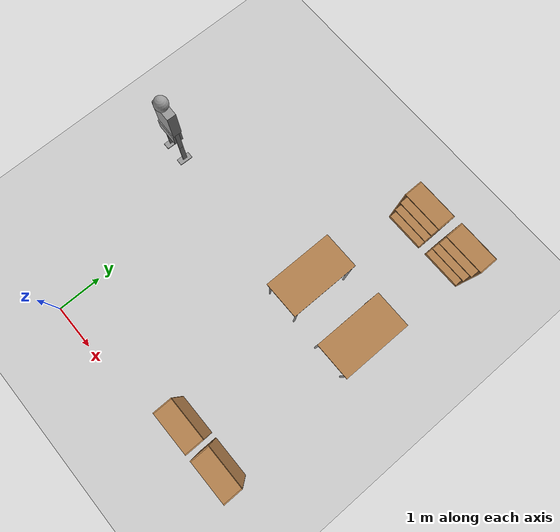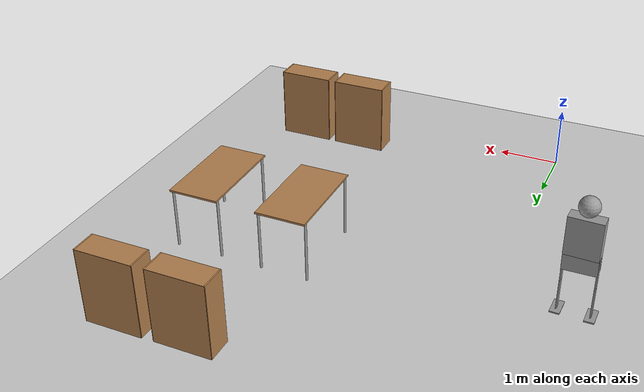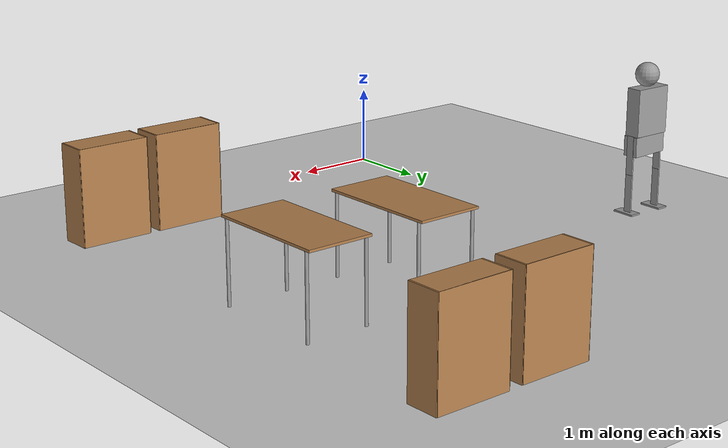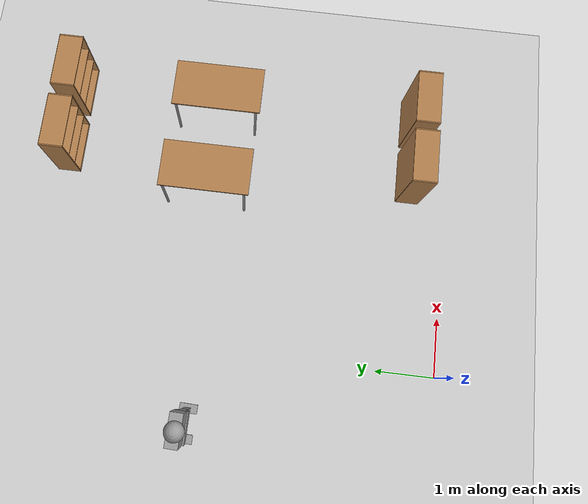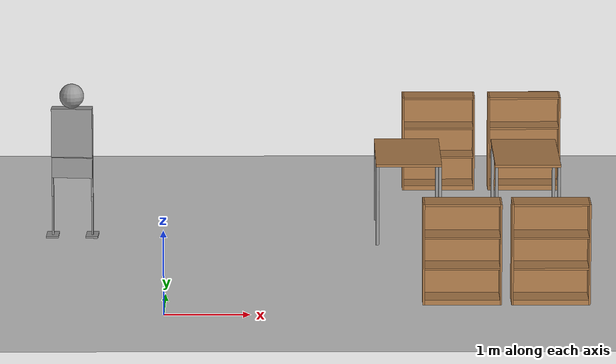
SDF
<sdf version="1.6">
 <world name="default">
  <model name="ground_plane">
   <static>1</static>
   <link name="link">
    <collision name="collision">
     <geometry><plane><normal>0 0 1</normal><size>100 100</size></plane></geometry>
     <surface>
      <contact><collide_bitmask>65535</collide_bitmask></contact>
      <friction><ode><mu>100</mu><mu2>50</mu2></ode></friction>
     </surface>
    </collision>
    <visual name="visual">
     <cast_shadows>0</cast_shadows>
     <geometry><plane><normal>0 0 1</normal><size>100 100</size></plane></geometry>
     <material>
      <script><uri>file://media/materials/scripts/gazebo.material</uri><name>Gazebo/Grey</name></script>
     </material>
    </visual>
   </link>
  </model>
  <model name="bookshelf">
   <static>1</static>
   <link name="link">
    <inertial><mass>1</mass></inertial>
    <collision name="back">
     <pose>0 0.005 0.6 0 -0 0</pose>
     <geometry><box><size>0.9 0.01 1.2</size></box></geometry>
    </collision>
    <visual name="visual1">
     <pose>0 0.005 0.6 0 -0 0</pose>
     <geometry><box><size>0.9 0.01 1.2</size></box></geometry>
     <material>
      <script><uri>file://media/materials/scripts/gazebo.material</uri><name>Gazebo/Wood</name></script>
     </material>
    </visual>
    <collision name="left_side">
     <pose>0.45 -0.195 0.6 0 -0 0</pose>
     <geometry><box><size>0.02 0.4 1.2</size></box></geometry>
    </collision>
    <visual name="visual2">
     <pose>0.45 -0.195 0.6 0 -0 0</pose>
     <geometry><box><size>0.02 0.4 1.2</size></box></geometry>
     <material>
      <script><uri>file://media/materials/scripts/gazebo.material</uri><name>Gazebo/Wood</name></script>
     </material>
    </visual>
    <collision name="right_side">
     <pose>-0.45 -0.195 0.6 0 -0 0</pose>
     <geometry><box><size>0.02 0.4 1.2</size></box></geometry>
    </collision>
    <visual name="visual3">
     <pose>-0.45 -0.195 0.6 0 -0 0</pose>
     <geometry><box><size>0.02 0.4 1.2</size></box></geometry>
     <material>
      <script><uri>file://media/materials/scripts/gazebo.material</uri><name>Gazebo/Wood</name></script>
     </material>
    </visual>
    <collision name="bottom">
     <pose>0 -0.195 0.03 0 -0 0</pose>
     <geometry><box><size>0.88 0.4 0.06</size></box></geometry>
    </collision>
    <visual name="visual4">
     <pose>0 -0.195 0.03 0 -0 0</pose>
     <geometry><box><size>0.88 0.4 0.06</size></box></geometry>
     <material>
      <script><uri>file://media/materials/scripts/gazebo.material</uri><name>Gazebo/Wood</name></script>
     </material>
    </visual>
    <collision name="top">
     <pose>0 -0.195 1.19 0 -0 0</pose>
     <geometry><box><size>0.88 0.4 0.02</size></box></geometry>
    </collision>
    <visual name="visual5">
     <pose>0 -0.195 1.19 0 -0 0</pose>
     <geometry><box><size>0.88 0.4 0.02</size></box></geometry>
     <material>
      <script><uri>file://media/materials/scripts/gazebo.material</uri><name>Gazebo/Wood</name></script>
     </material>
    </visual>
    <collision name="low_shelf">
     <pose>0 -0.195 0.43 0 -0 0</pose>
     <geometry><box><size>0.88 0.4 0.02</size></box></geometry>
    </collision>
    <visual name="visual6">
     <pose>0 -0.195 0.43 0 -0 0</pose>
     <geometry><box><size>0.88 0.4 0.02</size></box></geometry>
     <material>
      <script><uri>file://media/materials/scripts/gazebo.material</uri><name>Gazebo/Wood</name></script>
     </material>
    </visual>
    <collision name="high_shelf">
     <pose>0 -0.195 0.8 0 -0 0</pose>
     <geometry><box><size>0.88 0.4 0.02</size></box></geometry>
    </collision>
    <visual name="visual7">
     <pose>0 -0.195 0.8 0 -0 0</pose>
     <geometry><box><size>0.88 0.4 0.02</size></box></geometry>
     <material>
      <script><uri>file://media/materials/scripts/gazebo.material</uri><name>Gazebo/Wood</name></script>
     </material>
    </visual>
   </link>
   <pose>3.46605 0.843207 0 0 -0 0</pose>
  </model>
  <model name="bookshelf_0">
   <static>1</static>
   <link name="link">
    <inertial><mass>1</mass></inertial>
    <collision name="back">
     <pose>0 0.005 0.6 0 -0 0</pose>
     <geometry><box><size>0.9 0.01 1.2</size></box></geometry>
    </collision>
    <visual name="visual1">
     <pose>0 0.005 0.6 0 -0 0</pose>
     <geometry><box><size>0.9 0.01 1.2</size></box></geometry>
     <material>
      <script><uri>file://media/materials/scripts/gazebo.material</uri><name>Gazebo/Wood</name></script>
     </material>
    </visual>
    <collision name="left_side">
     <pose>0.45 -0.195 0.6 0 -0 0</pose>
     <geometry><box><size>0.02 0.4 1.2</size></box></geometry>
    </collision>
    <visual name="visual2">
     <pose>0.45 -0.195 0.6 0 -0 0</pose>
     <geometry><box><size>0.02 0.4 1.2</size></box></geometry>
     <material>
      <script><uri>file://media/materials/scripts/gazebo.material</uri><name>Gazebo/Wood</name></script>
     </material>
    </visual>
    <collision name="right_side">
     <pose>-0.45 -0.195 0.6 0 -0 0</pose>
     <geometry><box><size>0.02 0.4 1.2</size></box></geometry>
    </collision>
    <visual name="visual3">
     <pose>-0.45 -0.195 0.6 0 -0 0</pose>
     <geometry><box><size>0.02 0.4 1.2</size></box></geometry>
     <material>
      <script><uri>file://media/materials/scripts/gazebo.material</uri><name>Gazebo/Wood</name></script>
     </material>
    </visual>
    <collision name="bottom">
     <pose>0 -0.195 0.03 0 -0 0</pose>
     <geometry><box><size>0.88 0.4 0.06</size></box></geometry>
    </collision>
    <visual name="visual4">
     <pose>0 -0.195 0.03 0 -0 0</pose>
     <geometry><box><size>0.88 0.4 0.06</size></box></geometry>
     <material>
      <script><uri>file://media/materials/scripts/gazebo.material</uri><name>Gazebo/Wood</name></script>
     </material>
    </visual>
    <collision name="top">
     <pose>0 -0.195 1.19 0 -0 0</pose>
     <geometry><box><size>0.88 0.4 0.02</size></box></geometry>
    </collision>
    <visual name="visual5">
     <pose>0 -0.195 1.19 0 -0 0</pose>
     <geometry><box><size>0.88 0.4 0.02</size></box></geometry>
     <material>
      <script><uri>file://media/materials/scripts/gazebo.material</uri><name>Gazebo/Wood</name></script>
     </material>
    </visual>
    <collision name="low_shelf">
     <pose>0 -0.195 0.43 0 -0 0</pose>
     <geometry><box><size>0.88 0.4 0.02</size></box></geometry>
    </collision>
    <visual name="visual6">
     <pose>0 -0.195 0.43 0 -0 0</pose>
     <geometry><box><size>0.88 0.4 0.02</size></box></geometry>
     <material>
      <script><uri>file://media/materials/scripts/gazebo.material</uri><name>Gazebo/Wood</name></script>
     </material>
    </visual>
    <collision name="high_shelf">
     <pose>0 -0.195 0.8 0 -0 0</pose>
     <geometry><box><size>0.88 0.4 0.02</size></box></geometry>
    </collision>
    <visual name="visual7">
     <pose>0 -0.195 0.8 0 -0 0</pose>
     <geometry><box><size>0.88 0.4 0.02</size></box></geometry>
     <material>
      <script><uri>file://media/materials/scripts/gazebo.material</uri><name>Gazebo/Wood</name></script>
     </material>
    </visual>
   </link>
   <pose>4.50105 0.843269 0 0 -0 0</pose>
  </model>
  <model name="bookshelf_1">
   <static>1</static>
   <link name="link">
    <inertial><mass>1</mass></inertial>
    <collision name="back">
     <pose>0 0.005 0.6 0 -0 0</pose>
     <geometry><box><size>0.9 0.01 1.2</size></box></geometry>
    </collision>
    <visual name="visual1">
     <pose>0 0.005 0.6 0 -0 0</pose>
     <geometry><box><size>0.9 0.01 1.2</size></box></geometry>
     <material>
      <script><uri>file://media/materials/scripts/gazebo.material</uri><name>Gazebo/Wood</name></script>
     </material>
    </visual>
    <collision name="left_side">
     <pose>0.45 -0.195 0.6 0 -0 0</pose>
     <geometry><box><size>0.02 0.4 1.2</size></box></geometry>
    </collision>
    <visual name="visual2">
     <pose>0.45 -0.195 0.6 0 -0 0</pose>
     <geometry><box><size>0.02 0.4 1.2</size></box></geometry>
     <material>
      <script><uri>file://media/materials/scripts/gazebo.material</uri><name>Gazebo/Wood</name></script>
     </material>
    </visual>
    <collision name="right_side">
     <pose>-0.45 -0.195 0.6 0 -0 0</pose>
     <geometry><box><size>0.02 0.4 1.2</size></box></geometry>
    </collision>
    <visual name="visual3">
     <pose>-0.45 -0.195 0.6 0 -0 0</pose>
     <geometry><box><size>0.02 0.4 1.2</size></box></geometry>
     <material>
      <script><uri>file://media/materials/scripts/gazebo.material</uri><name>Gazebo/Wood</name></script>
     </material>
    </visual>
    <collision name="bottom">
     <pose>0 -0.195 0.03 0 -0 0</pose>
     <geometry><box><size>0.88 0.4 0.06</size></box></geometry>
    </collision>
    <visual name="visual4">
     <pose>0 -0.195 0.03 0 -0 0</pose>
     <geometry><box><size>0.88 0.4 0.06</size></box></geometry>
     <material>
      <script><uri>file://media/materials/scripts/gazebo.material</uri><name>Gazebo/Wood</name></script>
     </material>
    </visual>
    <collision name="top">
     <pose>0 -0.195 1.19 0 -0 0</pose>
     <geometry><box><size>0.88 0.4 0.02</size></box></geometry>
    </collision>
    <visual name="visual5">
     <pose>0 -0.195 1.19 0 -0 0</pose>
     <geometry><box><size>0.88 0.4 0.02</size></box></geometry>
     <material>
      <script><uri>file://media/materials/scripts/gazebo.material</uri><name>Gazebo/Wood</name></script>
     </material>
    </visual>
    <collision name="low_shelf">
     <pose>0 -0.195 0.43 0 -0 0</pose>
     <geometry><box><size>0.88 0.4 0.02</size></box></geometry>
    </collision>
    <visual name="visual6">
     <pose>0 -0.195 0.43 0 -0 0</pose>
     <geometry><box><size>0.88 0.4 0.02</size></box></geometry>
     <material>
      <script><uri>file://media/materials/scripts/gazebo.material</uri><name>Gazebo/Wood</name></script>
     </material>
    </visual>
    <collision name="high_shelf">
     <pose>0 -0.195 0.8 0 -0 0</pose>
     <geometry><box><size>0.88 0.4 0.02</size></box></geometry>
    </collision>
    <visual name="visual7">
     <pose>0 -0.195 0.8 0 -0 0</pose>
     <geometry><box><size>0.88 0.4 0.02</size></box></geometry>
     <material>
      <script><uri>file://media/materials/scripts/gazebo.material</uri><name>Gazebo/Wood</name></script>
     </material>
    </visual>
   </link>
   <pose>4.44157 6.94121 0 0 -0 0</pose>
  </model>
  <model name="bookshelf_2">
   <static>1</static>
   <link name="link">
    <inertial><mass>1</mass></inertial>
    <collision name="back">
     <pose>0 0.005 0.6 0 -0 0</pose>
     <geometry><box><size>0.9 0.01 1.2</size></box></geometry>
    </collision>
    <visual name="visual1">
     <pose>0 0.005 0.6 0 -0 0</pose>
     <geometry><box><size>0.9 0.01 1.2</size></box></geometry>
     <material>
      <script><uri>file://media/materials/scripts/gazebo.material</uri><name>Gazebo/Wood</name></script>
     </material>
    </visual>
    <collision name="left_side">
     <pose>0.45 -0.195 0.6 0 -0 0</pose>
     <geometry><box><size>0.02 0.4 1.2</size></box></geometry>
    </collision>
    <visual name="visual2">
     <pose>0.45 -0.195 0.6 0 -0 0</pose>
     <geometry><box><size>0.02 0.4 1.2</size></box></geometry>
     <material>
      <script><uri>file://media/materials/scripts/gazebo.material</uri><name>Gazebo/Wood</name></script>
     </material>
    </visual>
    <collision name="right_side">
     <pose>-0.45 -0.195 0.6 0 -0 0</pose>
     <geometry><box><size>0.02 0.4 1.2</size></box></geometry>
    </collision>
    <visual name="visual3">
     <pose>-0.45 -0.195 0.6 0 -0 0</pose>
     <geometry><box><size>0.02 0.4 1.2</size></box></geometry>
     <material>
      <script><uri>file://media/materials/scripts/gazebo.material</uri><name>Gazebo/Wood</name></script>
     </material>
    </visual>
    <collision name="bottom">
     <pose>0 -0.195 0.03 0 -0 0</pose>
     <geometry><box><size>0.88 0.4 0.06</size></box></geometry>
    </collision>
    <visual name="visual4">
     <pose>0 -0.195 0.03 0 -0 0</pose>
     <geometry><box><size>0.88 0.4 0.06</size></box></geometry>
     <material>
      <script><uri>file://media/materials/scripts/gazebo.material</uri><name>Gazebo/Wood</name></script>
     </material>
    </visual>
    <collision name="top">
     <pose>0 -0.195 1.19 0 -0 0</pose>
     <geometry><box><size>0.88 0.4 0.02</size></box></geometry>
    </collision>
    <visual name="visual5">
     <pose>0 -0.195 1.19 0 -0 0</pose>
     <geometry><box><size>0.88 0.4 0.02</size></box></geometry>
     <material>
      <script><uri>file://media/materials/scripts/gazebo.material</uri><name>Gazebo/Wood</name></script>
     </material>
    </visual>
    <collision name="low_shelf">
     <pose>0 -0.195 0.43 0 -0 0</pose>
     <geometry><box><size>0.88 0.4 0.02</size></box></geometry>
    </collision>
    <visual name="visual6">
     <pose>0 -0.195 0.43 0 -0 0</pose>
     <geometry><box><size>0.88 0.4 0.02</size></box></geometry>
     <material>
      <script><uri>file://media/materials/scripts/gazebo.material</uri><name>Gazebo/Wood</name></script>
     </material>
    </visual>
    <collision name="high_shelf">
     <pose>0 -0.195 0.8 0 -0 0</pose>
     <geometry><box><size>0.88 0.4 0.02</size></box></geometry>
    </collision>
    <visual name="visual7">
     <pose>0 -0.195 0.8 0 -0 0</pose>
     <geometry><box><size>0.88 0.4 0.02</size></box></geometry>
     <material>
      <script><uri>file://media/materials/scripts/gazebo.material</uri><name>Gazebo/Wood</name></script>
     </material>
    </visual>
   </link>
   <pose>3.35137 6.92868 0 0 -0 0</pose>
  </model>
  <model name="table">
   <static>1</static>
   <link name="link">
    <collision name="surface">
     <pose>0 0 1 0 -0 0</pose>
     <geometry><box><size>1.5 0.8 0.03</size></box></geometry>
     <surface><friction><ode><mu>0.6</mu><mu2>0.6</mu2></ode></friction></surface>
    </collision>
    <visual name="visual1">
     <pose>0 0 1 0 -0 0</pose>
     <geometry><box><size>1.5 0.8 0.03</size></box></geometry>
     <material>
      <script><uri>file://media/materials/scripts/gazebo.material</uri><name>Gazebo/Wood</name></script>
     </material>
    </visual>
    <collision name="front_left_leg">
     <pose>0.68 0.38 0.5 0 -0 0</pose>
     <geometry><cylinder><radius>0.02</radius><length>1</length></cylinder></geometry>
    </collision>
    <visual name="front_left_leg">
     <pose>0.68 0.38 0.5 0 -0 0</pose>
     <geometry><cylinder><radius>0.02</radius><length>1</length></cylinder></geometry>
     <material>
      <script><uri>file://media/materials/scripts/gazebo.material</uri><name>Gazebo/Grey</name></script>
     </material>
    </visual>
    <collision name="front_right_leg">
     <pose>0.68 -0.38 0.5 0 -0 0</pose>
     <geometry><cylinder><radius>0.02</radius><length>1</length></cylinder></geometry>
    </collision>
    <visual name="front_right_leg">
     <pose>0.68 -0.38 0.5 0 -0 0</pose>
     <geometry><cylinder><radius>0.02</radius><length>1</length></cylinder></geometry>
     <material>
      <script><uri>file://media/materials/scripts/gazebo.material</uri><name>Gazebo/Grey</name></script>
     </material>
    </visual>
    <collision name="back_right_leg">
     <pose>-0.68 -0.38 0.5 0 -0 0</pose>
     <geometry><cylinder><radius>0.02</radius><length>1</length></cylinder></geometry>
    </collision>
    <visual name="back_right_leg">
     <pose>-0.68 -0.38 0.5 0 -0 0</pose>
     <geometry><cylinder><radius>0.02</radius><length>1</length></cylinder></geometry>
     <material>
      <script><uri>file://media/materials/scripts/gazebo.material</uri><name>Gazebo/Grey</name></script>
     </material>
    </visual>
    <collision name="back_left_leg">
     <pose>-0.68 0.38 0.5 0 -0 0</pose>
     <geometry><cylinder><radius>0.02</radius><length>1</length></cylinder></geometry>
    </collision>
    <visual name="back_left_leg">
     <pose>-0.68 0.38 0.5 0 -0 0</pose>
     <geometry><cylinder><radius>0.02</radius><length>1</length></cylinder></geometry>
     <material>
      <script><uri>file://media/materials/scripts/gazebo.material</uri><name>Gazebo/Grey</name></script>
     </material>
    </visual>
   </link>
   <pose>2.90603 4.19295 0 0 -0 1.5708</pose>
  </model>
  <model name="table_1">
   <static>1</static>
   <link name="link">
    <collision name="surface">
     <pose>0 0 1 0 -0 0</pose>
     <geometry><box><size>1.5 0.8 0.03</size></box></geometry>
     <surface><friction><ode><mu>0.6</mu><mu2>0.6</mu2></ode></friction></surface>
    </collision>
    <visual name="visual1">
     <pose>0 0 1 0 -0 0</pose>
     <geometry><box><size>1.5 0.8 0.03</size></box></geometry>
     <material>
      <script><uri>file://media/materials/scripts/gazebo.material</uri><name>Gazebo/Wood</name></script>
     </material>
    </visual>
    <collision name="front_left_leg">
     <pose>0.68 0.38 0.5 0 -0 0</pose>
     <geometry><cylinder><radius>0.02</radius><length>1</length></cylinder></geometry>
    </collision>
    <visual name="front_left_leg">
     <pose>0.68 0.38 0.5 0 -0 0</pose>
     <geometry><cylinder><radius>0.02</radius><length>1</length></cylinder></geometry>
     <material>
      <script><uri>file://media/materials/scripts/gazebo.material</uri><name>Gazebo/Grey</name></script>
     </material>
    </visual>
    <collision name="front_right_leg">
     <pose>0.68 -0.38 0.5 0 -0 0</pose>
     <geometry><cylinder><radius>0.02</radius><length>1</length></cylinder></geometry>
    </collision>
    <visual name="front_right_leg">
     <pose>0.68 -0.38 0.5 0 -0 0</pose>
     <geometry><cylinder><radius>0.02</radius><length>1</length></cylinder></geometry>
     <material>
      <script><uri>file://media/materials/scripts/gazebo.material</uri><name>Gazebo/Grey</name></script>
     </material>
    </visual>
    <collision name="back_right_leg">
     <pose>-0.68 -0.38 0.5 0 -0 0</pose>
     <geometry><cylinder><radius>0.02</radius><length>1</length></cylinder></geometry>
    </collision>
    <visual name="back_right_leg">
     <pose>-0.68 -0.38 0.5 0 -0 0</pose>
     <geometry><cylinder><radius>0.02</radius><length>1</length></cylinder></geometry>
     <material>
      <script><uri>file://media/materials/scripts/gazebo.material</uri><name>Gazebo/Grey</name></script>
     </material>
    </visual>
    <collision name="back_left_leg">
     <pose>-0.68 0.38 0.5 0 -0 0</pose>
     <geometry><cylinder><radius>0.02</radius><length>1</length></cylinder></geometry>
    </collision>
    <visual name="back_left_leg">
     <pose>-0.68 0.38 0.5 0 -0 0</pose>
     <geometry><cylinder><radius>0.02</radius><length>1</length></cylinder></geometry>
     <material>
      <script><uri>file://media/materials/scripts/gazebo.material</uri><name>Gazebo/Grey</name></script>
     </material>
    </visual>
   </link>
   <pose>4.35569 4.17225 0 0 -0 1.5708</pose>
  </model>
  <model name="HumanoidRobot_0">
   <link name="link_0">
    <inertial>
     <mass>1</mass>
     <inertia>
      <ixx>0.166667</ixx>
      <ixy>0</ixy>
      <ixz>0</ixz>
      <iyy>0.166667</iyy>
      <iyz>0</iyz>
      <izz>0.166667</izz>
     </inertia>
    </inertial>
    <pose>-0.343615 0.441205 -0.57 0 -0 0</pose>
    <visual name="visual">
     <geometry><box><size>0.3 0.15 0.02</size></box></geometry>
     <material>
      <lighting>1</lighting>
      <script><uri>file://media/materials/scripts/gazebo.material</uri><name>Gazebo/Grey</name></script>
      <shader type="vertex"><normal_map>__default__</normal_map></shader>
      <ambient>0.3 0.3 0.3 1</ambient>
      <diffuse>0.7 0.7 0.7 1</diffuse>
      <specular>0.01 0.01 0.01 1</specular>
      <emissive>0 0 0 1</emissive>
     </material>
    </visual>
    <collision name="collision">
     <geometry><box><size>0.3 0.15 0.02</size></box></geometry>
     <surface>
      <friction>
       <ode><mu>1</mu><mu2>1</mu2><fdir1>0 0 0</fdir1><slip1>0</slip1><slip2>0</slip2></ode>
       <torsional>
        <coefficient>1</coefficient>
        <patch_radius>0</patch_radius>
        <surface_radius>0</surface_radius>
        <use_patch_radius>1</use_patch_radius>
        <ode><slip>0</slip></ode>
       </torsional>
      </friction>
      <bounce><restitution_coefficient>0</restitution_coefficient><threshold>1e+06</threshold></bounce>
      <contact>
       <collide_without_contact>0</collide_without_contact>
       <collide_without_contact_bitmask>1</collide_without_contact_bitmask>
       <collide_bitmask>1</collide_bitmask>
       <ode>
        <soft_cfm>0</soft_cfm>
        <soft_erp>0.2</soft_erp>
        <kp>1e+13</kp>
        <kd>1</kd>
        <max_vel>0.01</max_vel>
        <min_depth>0</min_depth>
       </ode>
       <bullet>
        <split_impulse>1</split_impulse>
        <split_impulse_penetration_threshold>-0.01</split_impulse_penetration_threshold>
        <soft_cfm>0</soft_cfm>
        <soft_erp>0.2</soft_erp>
        <kp>1e+13</kp>
        <kd>1</kd>
       </bullet>
      </contact>
     </surface>
    </collision>
   </link>
   <link name="link_0_0">
    <inertial>
     <mass>1</mass>
     <inertia>
      <ixx>0.166667</ixx>
      <ixy>0</ixy>
      <ixz>0</ixz>
      <iyy>0.166667</iyy>
      <iyz>0</iyz>
      <izz>0.166667</izz>
     </inertia>
    </inertial>
    <pose>-0.343165 0.687318 0.290025 -0.02 -0 0.000135</pose>
    <visual name="visual">
     <geometry><box><size>0.2 0.5 0.25</size></box></geometry>
     <material>
      <lighting>1</lighting>
      <script><uri>file://media/materials/scripts/gazebo.material</uri><name>Gazebo/Grey</name></script>
      <emissive>0 0 0 1</emissive>
      <shader type="vertex"><normal_map>__default__</normal_map></shader>
      <ambient>0.3 0.3 0.3 1</ambient>
      <diffuse>0.7 0.7 0.7 1</diffuse>
      <specular>0.01 0.01 0.01 1</specular>
     </material>
    </visual>
    <collision name="collision">
     <geometry><box><size>0.2 0.5 0.25</size></box></geometry>
     <surface>
      <friction>
       <ode><mu>1</mu><mu2>1</mu2><fdir1>0 0 0</fdir1><slip1>0</slip1><slip2>0</slip2></ode>
       <torsional>
        <coefficient>1</coefficient>
        <patch_radius>0</patch_radius>
        <surface_radius>0</surface_radius>
        <use_patch_radius>1</use_patch_radius>
        <ode><slip>0</slip></ode>
       </torsional>
      </friction>
      <bounce><restitution_coefficient>0</restitution_coefficient><threshold>1e+06</threshold></bounce>
      <contact>
       <collide_without_contact>0</collide_without_contact>
       <collide_without_contact_bitmask>1</collide_without_contact_bitmask>
       <collide_bitmask>1</collide_bitmask>
       <ode>
        <soft_cfm>0</soft_cfm>
        <soft_erp>0.2</soft_erp>
        <kp>1e+13</kp>
        <kd>1</kd>
        <max_vel>0.01</max_vel>
        <min_depth>0</min_depth>
       </ode>
       <bullet>
        <split_impulse>1</split_impulse>
        <split_impulse_penetration_threshold>-0.01</split_impulse_penetration_threshold>
        <soft_cfm>0</soft_cfm>
        <soft_erp>0.2</soft_erp>
        <kp>1e+13</kp>
        <kd>1</kd>
       </bullet>
      </contact>
     </surface>
    </collision>
   </link>
   <link name="link_0_1">
    <inertial>
     <mass>1</mass>
     <inertia>
      <ixx>0.166667</ixx>
      <ixy>0</ixy>
      <ixz>0</ixz>
      <iyy>0.166667</iyy>
      <iyz>0</iyz>
      <izz>0.166667</izz>
     </inertia>
    </inertial>
    <pose>-0.363163 0.687646 0.720003 1.1e-05 -1e-06 -0.016637</pose>
    <visual name="visual">
     <geometry><box><size>0.2 0.5 0.6</size></box></geometry>
     <material>
      <lighting>1</lighting>
      <script><uri>file://media/materials/scripts/gazebo.material</uri><name>Gazebo/Grey</name></script>
      <shader type="vertex"><normal_map>__default__</normal_map></shader>
      <ambient>0.3 0.3 0.3 1</ambient>
      <diffuse>0.7 0.7 0.7 1</diffuse>
      <specular>0.01 0.01 0.01 1</specular>
      <emissive>0 0 0 1</emissive>
     </material>
    </visual>
    <collision name="collision">
     <geometry><box><size>0.2 0.5 0.6</size></box></geometry>
     <surface>
      <friction>
       <ode><mu>1</mu><mu2>1</mu2><fdir1>0 0 0</fdir1><slip1>0</slip1><slip2>0</slip2></ode>
       <torsional>
        <coefficient>1</coefficient>
        <patch_radius>0</patch_radius>
        <surface_radius>0</surface_radius>
        <use_patch_radius>1</use_patch_radius>
        <ode><slip>0</slip></ode>
       </torsional>
      </friction>
      <bounce><restitution_coefficient>0</restitution_coefficient><threshold>1e+06</threshold></bounce>
      <contact>
       <collide_without_contact>0</collide_without_contact>
       <collide_without_contact_bitmask>1</collide_without_contact_bitmask>
       <collide_bitmask>1</collide_bitmask>
       <ode>
        <soft_cfm>0</soft_cfm>
        <soft_erp>0.2</soft_erp>
        <kp>1e+13</kp>
        <kd>1</kd>
        <max_vel>0.01</max_vel>
        <min_depth>0</min_depth>
       </ode>
       <bullet>
        <split_impulse>1</split_impulse>
        <split_impulse_penetration_threshold>-0.01</split_impulse_penetration_threshold>
        <soft_cfm>0</soft_cfm>
        <soft_erp>0.2</soft_erp>
        <kp>1e+13</kp>
        <kd>1</kd>
       </bullet>
      </contact>
     </surface>
    </collision>
   </link>
   <link name="link_0_clone">
    <inertial>
     <mass>1</mass>
     <inertia>
      <ixx>0.166667</ixx>
      <ixy>0</ixy>
      <ixz>0</ixz>
      <iyy>0.166667</iyy>
      <iyz>0</iyz>
      <izz>0.166667</izz>
     </inertia>
    </inertial>
    <pose>-0.332418 0.927316 -0.56999 1.1e-05 -1e-06 -0.016637</pose>
    <visual name="visual">
     <geometry><box><size>0.3 0.15 0.02</size></box></geometry>
     <material>
      <lighting>1</lighting>
      <script><uri>file://media/materials/scripts/gazebo.material</uri><name>Gazebo/Grey</name></script>
      <shader type="vertex"><normal_map>__default__</normal_map></shader>
      <ambient>0.3 0.3 0.3 1</ambient>
      <diffuse>0.7 0.7 0.7 1</diffuse>
      <specular>0.01 0.01 0.01 1</specular>
      <emissive>0 0 0 1</emissive>
     </material>
    </visual>
    <collision name="collision">
     <geometry><box><size>0.3 0.15 0.02</size></box></geometry>
     <surface>
      <friction>
       <ode><mu>1</mu><mu2>1</mu2><fdir1>0 0 0</fdir1><slip1>0</slip1><slip2>0</slip2></ode>
       <torsional>
        <coefficient>1</coefficient>
        <patch_radius>0</patch_radius>
        <surface_radius>0</surface_radius>
        <use_patch_radius>1</use_patch_radius>
        <ode><slip>0</slip></ode>
       </torsional>
      </friction>
      <bounce><restitution_coefficient>0</restitution_coefficient><threshold>1e+06</threshold></bounce>
      <contact>
       <collide_without_contact>0</collide_without_contact>
       <collide_without_contact_bitmask>1</collide_without_contact_bitmask>
       <collide_bitmask>1</collide_bitmask>
       <ode>
        <soft_cfm>0</soft_cfm>
        <soft_erp>0.2</soft_erp>
        <kp>1e+13</kp>
        <kd>1</kd>
        <max_vel>0.01</max_vel>
        <min_depth>0</min_depth>
       </ode>
       <bullet>
        <split_impulse>1</split_impulse>
        <split_impulse_penetration_threshold>-0.01</split_impulse_penetration_threshold>
        <soft_cfm>0</soft_cfm>
        <soft_erp>0.2</soft_erp>
        <kp>1e+13</kp>
        <kd>1</kd>
       </bullet>
      </contact>
     </surface>
    </collision>
   </link>
   <link name="link_1">
    <inertial>
     <mass>1</mass>
     <inertia>
      <ixx>0.166667</ixx>
      <ixy>0</ixy>
      <ixz>0</ixz>
      <iyy>0.166667</iyy>
      <iyz>0</iyz>
      <izz>0.166667</izz>
     </inertia>
    </inertial>
    <pose>-0.35434 0.444776 -0.33 0 -0 0</pose>
    <visual name="visual">
     <geometry><box><size>0.1 0.02 0.5</size></box></geometry>
     <material>
      <lighting>1</lighting>
      <script><uri>file://media/materials/scripts/gazebo.material</uri><name>Gazebo/Grey</name></script>
      <shader type="vertex"><normal_map>__default__</normal_map></shader>
      <ambient>0.3 0.3 0.3 1</ambient>
      <diffuse>0.7 0.7 0.7 1</diffuse>
      <specular>0.01 0.01 0.01 1</specular>
      <emissive>0 0 0 1</emissive>
     </material>
    </visual>
    <collision name="collision">
     <geometry><box><size>0.1 0.02 0.5</size></box></geometry>
     <surface>
      <friction>
       <ode><mu>1</mu><mu2>1</mu2><fdir1>0 0 0</fdir1><slip1>0</slip1><slip2>0</slip2></ode>
       <torsional>
        <coefficient>1</coefficient>
        <patch_radius>0</patch_radius>
        <surface_radius>0</surface_radius>
        <use_patch_radius>1</use_patch_radius>
        <ode><slip>0</slip></ode>
       </torsional>
      </friction>
      <bounce><restitution_coefficient>0</restitution_coefficient><threshold>1e+06</threshold></bounce>
      <contact>
       <collide_without_contact>0</collide_without_contact>
       <collide_without_contact_bitmask>1</collide_without_contact_bitmask>
       <collide_bitmask>1</collide_bitmask>
       <ode>
        <soft_cfm>0</soft_cfm>
        <soft_erp>0.2</soft_erp>
        <kp>1e+13</kp>
        <kd>1</kd>
        <max_vel>0.01</max_vel>
        <min_depth>0</min_depth>
       </ode>
       <bullet>
        <split_impulse>1</split_impulse>
        <split_impulse_penetration_threshold>-0.01</split_impulse_penetration_threshold>
        <soft_cfm>0</soft_cfm>
        <soft_erp>0.2</soft_erp>
        <kp>1e+13</kp>
        <kd>1</kd>
       </bullet>
      </contact>
     </surface>
    </collision>
   </link>
   <link name="link_1_0">
    <inertial>
     <mass>1</mass>
     <inertia><ixx>0.1</ixx><ixy>0</ixy><ixz>0</ixz><iyy>0.1</iyy><iyz>0</iyz><izz>0.1</izz></inertia>
    </inertial>
    <pose>-0.343166 0.687308 1.17 1.1e-05 -1e-06 -0.016637</pose>
    <visual name="visual">
     <geometry><sphere><radius>0.15</radius></sphere></geometry>
     <material>
      <lighting>1</lighting>
      <script><uri>file://media/materials/scripts/gazebo.material</uri><name>Gazebo/Grey</name></script>
      <shader type="vertex"><normal_map>__default__</normal_map></shader>
      <ambient>0.3 0.3 0.3 1</ambient>
      <diffuse>0.7 0.7 0.7 1</diffuse>
      <specular>0.01 0.01 0.01 1</specular>
      <emissive>0 0 0 1</emissive>
     </material>
    </visual>
    <collision name="collision">
     <geometry><sphere><radius>0.15</radius></sphere></geometry>
     <surface>
      <friction>
       <ode><mu>1</mu><mu2>1</mu2><fdir1>0 0 0</fdir1><slip1>0</slip1><slip2>0</slip2></ode>
       <torsional>
        <coefficient>1</coefficient>
        <patch_radius>0</patch_radius>
        <surface_radius>0</surface_radius>
        <use_patch_radius>1</use_patch_radius>
        <ode><slip>0</slip></ode>
       </torsional>
      </friction>
      <bounce><restitution_coefficient>0</restitution_coefficient><threshold>1e+06</threshold></bounce>
      <contact>
       <collide_without_contact>0</collide_without_contact>
       <collide_without_contact_bitmask>1</collide_without_contact_bitmask>
       <collide_bitmask>1</collide_bitmask>
       <ode>
        <soft_cfm>0</soft_cfm>
        <soft_erp>0.2</soft_erp>
        <kp>1e+13</kp>
        <kd>1</kd>
        <max_vel>0.01</max_vel>
        <min_depth>0</min_depth>
       </ode>
       <bullet>
        <split_impulse>1</split_impulse>
        <split_impulse_penetration_threshold>-0.01</split_impulse_penetration_threshold>
        <soft_cfm>0</soft_cfm>
        <soft_erp>0.2</soft_erp>
        <kp>1e+13</kp>
        <kd>1</kd>
       </bullet>
      </contact>
     </surface>
    </collision>
   </link>
   <link name="link_1_clone">
    <inertial>
     <mass>1</mass>
     <inertia>
      <ixx>0.166667</ixx>
      <ixy>0</ixy>
      <ixz>0</ixz>
      <iyy>0.166667</iyy>
      <iyz>0</iyz>
      <izz>0.166667</izz>
     </inertia>
    </inertial>
    <pose>-0.354336 0.444783 0.17 0 -0 0.000135</pose>
    <visual name="visual">
     <geometry><box><size>0.1 0.02 0.5</size></box></geometry>
     <material>
      <lighting>1</lighting>
      <script><uri>file://media/materials/scripts/gazebo.material</uri><name>Gazebo/Grey</name></script>
      <shader type="vertex"><normal_map>__default__</normal_map></shader>
      <ambient>0.3 0.3 0.3 1</ambient>
      <diffuse>0.7 0.7 0.7 1</diffuse>
      <specular>0.01 0.01 0.01 1</specular>
      <emissive>0 0 0 1</emissive>
     </material>
    </visual>
    <collision name="collision">
     <geometry><box><size>0.1 0.02 0.5</size></box></geometry>
     <surface>
      <friction>
       <ode><mu>1</mu><mu2>1</mu2><fdir1>0 0 0</fdir1><slip1>0</slip1><slip2>0</slip2></ode>
       <torsional>
        <coefficient>1</coefficient>
        <patch_radius>0</patch_radius>
        <surface_radius>0</surface_radius>
        <use_patch_radius>1</use_patch_radius>
        <ode><slip>0</slip></ode>
       </torsional>
      </friction>
      <bounce><restitution_coefficient>0</restitution_coefficient><threshold>1e+06</threshold></bounce>
      <contact>
       <collide_without_contact>0</collide_without_contact>
       <collide_without_contact_bitmask>1</collide_without_contact_bitmask>
       <collide_bitmask>1</collide_bitmask>
       <ode>
        <soft_cfm>0</soft_cfm>
        <soft_erp>0.2</soft_erp>
        <kp>1e+13</kp>
        <kd>1</kd>
        <max_vel>0.01</max_vel>
        <min_depth>0</min_depth>
       </ode>
       <bullet>
        <split_impulse>1</split_impulse>
        <split_impulse_penetration_threshold>-0.01</split_impulse_penetration_threshold>
        <soft_cfm>0</soft_cfm>
        <soft_erp>0.2</soft_erp>
        <kp>1e+13</kp>
        <kd>1</kd>
       </bullet>
      </contact>
     </surface>
    </collision>
   </link>
   <link name="link_1_clone_clone">
    <inertial>
     <mass>1</mass>
     <inertia>
      <ixx>0.166667</ixx>
      <ixy>0</ixy>
      <ixz>0</ixz>
      <iyy>0.166667</iyy>
      <iyz>0</iyz>
      <izz>0.166667</izz>
     </inertia>
    </inertial>
    <pose>-0.342645 0.929993 0.17001 2e-05 0 -0.002009</pose>
    <visual name="visual">
     <geometry><box><size>0.1 0.02 0.5</size></box></geometry>
     <material>
      <lighting>1</lighting>
      <script><uri>file://media/materials/scripts/gazebo.material</uri><name>Gazebo/Grey</name></script>
      <shader type="vertex"><normal_map>__default__</normal_map></shader>
      <ambient>0.3 0.3 0.3 1</ambient>
      <diffuse>0.7 0.7 0.7 1</diffuse>
      <specular>0.01 0.01 0.01 1</specular>
      <emissive>0 0 0 1</emissive>
     </material>
    </visual>
    <collision name="collision">
     <geometry><box><size>0.1 0.02 0.5</size></box></geometry>
     <surface>
      <friction>
       <ode><mu>1</mu><mu2>1</mu2><fdir1>0 0 0</fdir1><slip1>0</slip1><slip2>0</slip2></ode>
       <torsional>
        <coefficient>1</coefficient>
        <patch_radius>0</patch_radius>
        <surface_radius>0</surface_radius>
        <use_patch_radius>1</use_patch_radius>
        <ode><slip>0</slip></ode>
       </torsional>
      </friction>
      <bounce><restitution_coefficient>0</restitution_coefficient><threshold>1e+06</threshold></bounce>
      <contact>
       <collide_without_contact>0</collide_without_contact>
       <collide_without_contact_bitmask>1</collide_without_contact_bitmask>
       <collide_bitmask>1</collide_bitmask>
       <ode>
        <soft_cfm>0</soft_cfm>
        <soft_erp>0.2</soft_erp>
        <kp>1e+13</kp>
        <kd>1</kd>
        <max_vel>0.01</max_vel>
        <min_depth>0</min_depth>
       </ode>
       <bullet>
        <split_impulse>1</split_impulse>
        <split_impulse_penetration_threshold>-0.01</split_impulse_penetration_threshold>
        <soft_cfm>0</soft_cfm>
        <soft_erp>0.2</soft_erp>
        <kp>1e+13</kp>
        <kd>1</kd>
       </bullet>
      </contact>
     </surface>
    </collision>
   </link>
   <link name="link_1_clone_clone_0">
    <inertial>
     <mass>1</mass>
     <inertia>
      <ixx>0.166667</ixx>
      <ixy>0</ixy>
      <ixz>0</ixz>
      <iyy>0.166667</iyy>
      <iyz>0</iyz>
      <izz>0.166667</izz>
     </inertia>
    </inertial>
    <pose>-0.342645 0.930003 -0.32999 2e-05 0 -0.002009</pose>
    <visual name="visual">
     <geometry><box><size>0.1 0.02 0.5</size></box></geometry>
     <material>
      <lighting>1</lighting>
      <script><uri>file://media/materials/scripts/gazebo.material</uri><name>Gazebo/Grey</name></script>
      <shader type="vertex"><normal_map>__default__</normal_map></shader>
      <ambient>0.3 0.3 0.3 1</ambient>
      <diffuse>0.7 0.7 0.7 1</diffuse>
      <specular>0.01 0.01 0.01 1</specular>
      <emissive>0 0 0 1</emissive>
     </material>
    </visual>
    <collision name="collision">
     <geometry><box><size>0.1 0.02 0.5</size></box></geometry>
     <surface>
      <friction>
       <ode><mu>1</mu><mu2>1</mu2><fdir1>0 0 0</fdir1><slip1>0</slip1><slip2>0</slip2></ode>
       <torsional>
        <coefficient>1</coefficient>
        <patch_radius>0</patch_radius>
        <surface_radius>0</surface_radius>
        <use_patch_radius>1</use_patch_radius>
        <ode><slip>0</slip></ode>
       </torsional>
      </friction>
      <bounce><restitution_coefficient>0</restitution_coefficient><threshold>1e+06</threshold></bounce>
      <contact>
       <collide_without_contact>0</collide_without_contact>
       <collide_without_contact_bitmask>1</collide_without_contact_bitmask>
       <collide_bitmask>1</collide_bitmask>
       <ode>
        <soft_cfm>0</soft_cfm>
        <soft_erp>0.2</soft_erp>
        <kp>1e+13</kp>
        <kd>1</kd>
        <max_vel>0.01</max_vel>
        <min_depth>0</min_depth>
       </ode>
       <bullet>
        <split_impulse>1</split_impulse>
        <split_impulse_penetration_threshold>-0.01</split_impulse_penetration_threshold>
        <soft_cfm>0</soft_cfm>
        <soft_erp>0.2</soft_erp>
        <kp>1e+13</kp>
        <kd>1</kd>
       </bullet>
      </contact>
     </surface>
    </collision>
   </link>
   <joint name="link_0_0_JOINT_1" type="fixed">
    <parent>link_0_0</parent>
    <child>link_0_1</child>
    <physics>
     <ode><limit><cfm>0</cfm><erp>0.2</erp></limit><suspension><cfm>0</cfm><erp>0.2</erp></suspension></ode>
    </physics>
   </joint>
   <joint name="link_0_0_JOINT_3" type="fixed">
    <parent>link_0_0</parent>
    <child>link_1_clone_clone</child>
    <physics>
     <ode><limit><cfm>0</cfm><erp>0.2</erp></limit><suspension><cfm>0</cfm><erp>0.2</erp></suspension></ode>
    </physics>
   </joint>
   <joint name="link_0_1_JOINT_3" type="fixed">
    <parent>link_0_1</parent>
    <child>link_1_0</child>
    <physics>
     <ode><limit><cfm>0</cfm><erp>0.2</erp></limit><suspension><cfm>0</cfm><erp>0.2</erp></suspension></ode>
    </physics>
   </joint>
   <joint name="link_0_JOINT_0" type="fixed">
    <parent>link_0</parent>
    <child>link_1</child>
    <physics>
     <ode><limit><cfm>0</cfm><erp>0.2</erp></limit><suspension><cfm>0</cfm><erp>0.2</erp></suspension></ode>
    </physics>
   </joint>
   <joint name="link_1_JOINT_0" type="fixed">
    <parent>link_1</parent>
    <child>link_1_clone</child>
    <physics>
     <ode><limit><cfm>0</cfm><erp>0.2</erp></limit><suspension><cfm>0</cfm><erp>0.2</erp></suspension></ode>
    </physics>
   </joint>
   <joint name="link_1_clone_JOINT_1" type="fixed">
    <parent>link_1_clone</parent>
    <child>link_0_0</child>
    <physics>
     <ode><limit><cfm>0</cfm><erp>0.2</erp></limit><suspension><cfm>0</cfm><erp>0.2</erp></suspension></ode>
    </physics>
   </joint>
   <joint name="link_1_clone_clone_0_JOINT_0" type="revolute">
    <parent>link_1_clone_clone_0</parent>
    <child>link_0_clone</child>
    <axis>
     <xyz>1 0 0</xyz>
     <use_parent_model_frame>0</use_parent_model_frame>
     <limit>
      <lower>-1.79769e+308</lower>
      <upper>1.79769e+308</upper>
      <effort>-1</effort>
      <velocity>-1</velocity>
     </limit>
     <dynamics>
      <spring_reference>0</spring_reference>
      <spring_stiffness>0</spring_stiffness>
      <damping>0</damping>
     </dynamics>
    </axis>
    <physics>
     <ode><limit><cfm>0</cfm><erp>0.2</erp></limit><suspension><cfm>0</cfm><erp>0.2</erp></suspension></ode>
    </physics>
   </joint>
   <joint name="link_1_clone_clone_JOINT_5" type="fixed">
    <parent>link_1_clone_clone</parent>
    <child>link_1_clone_clone_0</child>
    <physics>
     <ode><limit><cfm>0</cfm><erp>0.2</erp></limit><suspension><cfm>0</cfm><erp>0.2</erp></suspension></ode>
    </physics>
   </joint>
   <static>0</static>
   <pose>-1.90121 3.70115 0.580006 -1.2e-05 -1e-06 -1.58605</pose>
  </model>
 </world>
</sdf>
